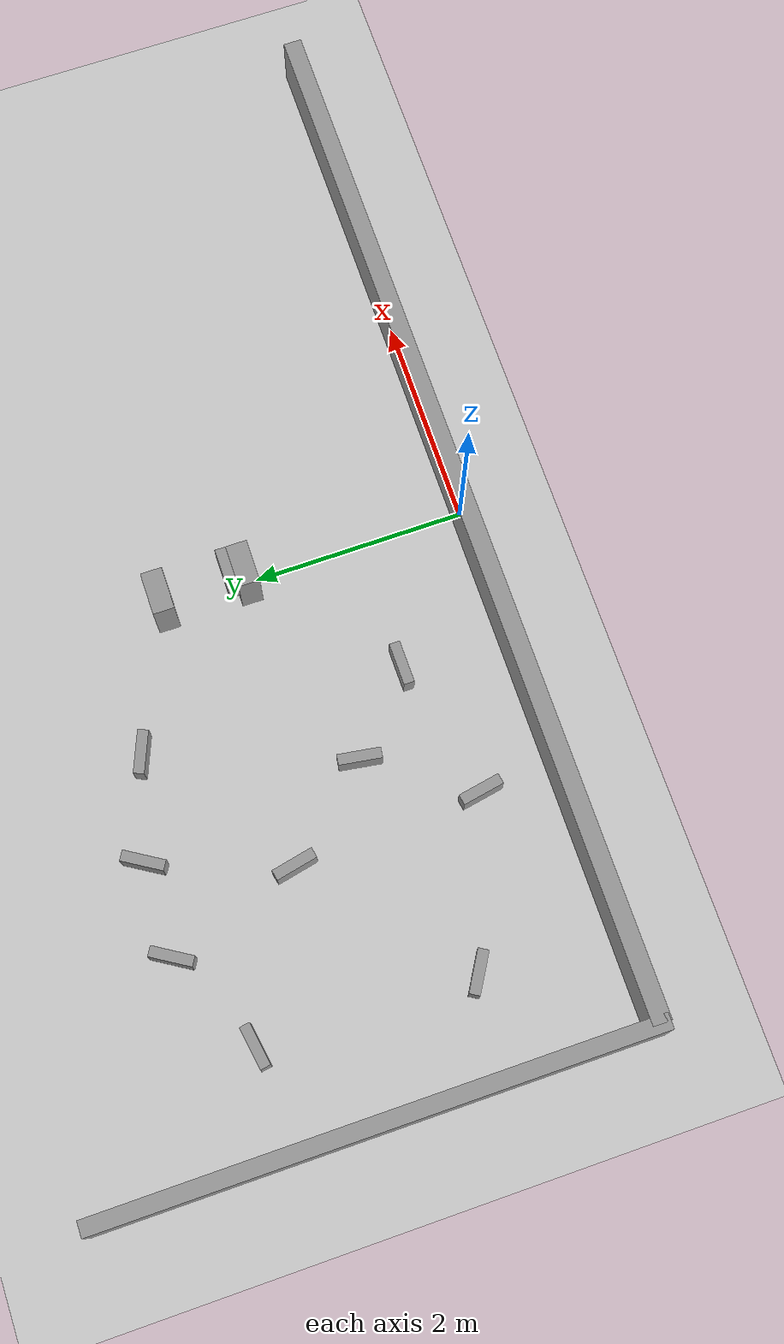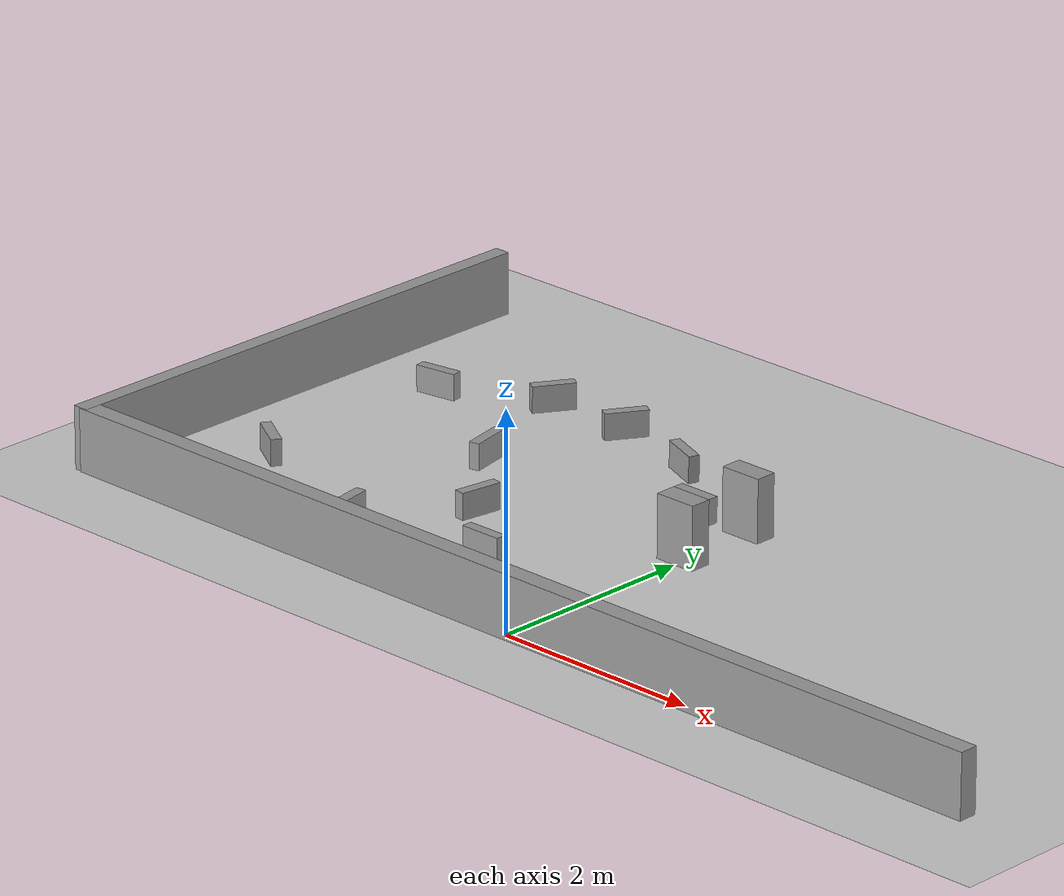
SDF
<sdf version="1.6">
 <world name="default">
  <model name="ground_plane">
   <static>1</static>
   <link name="link">
    <collision name="collision">
     <geometry><plane><normal>0 0 1</normal><size>100 100</size></plane></geometry>
     <surface><friction><ode><mu>100</mu><mu2>50</mu2></ode></friction></surface>
    </collision>
    <visual name="visual">
     <cast_shadows>0</cast_shadows>
     <geometry><plane><normal>0 0 1</normal><size>100 100</size></plane></geometry>
     <material>
      <script><uri>file://media/materials/scripts/gazebo.material</uri><name>Gazebo/Grey</name></script>
     </material>
    </visual>
   </link>
  </model>
  <model name="unit_box">
   <link name="link">
    <inertial>
     <mass>1</mass>
     <inertia>
      <ixx>0.166667</ixx>
      <ixy>0</ixy>
      <ixz>0</ixz>
      <iyy>0.166667</iyy>
      <iyz>0</iyz>
      <izz>0.166667</izz>
     </inertia>
    </inertial>
    <pose>0 0 0.3 0 -0 0</pose>
    <visual name="visual">
     <geometry><box><size>10 0.175 0.59</size></box></geometry>
     <material>
      <script><name>Gazebo/Grey</name><uri>file://media/materials/scripts/gazebo.material</uri></script>
      <shader type="pixel"><normal_map>__default__</normal_map></shader>
      <ambient>0.3 0.3 0.3 1</ambient>
      <diffuse>0.7 0.7 0.7 1</diffuse>
      <specular>0.01 0.01 0.01 1</specular>
      <emissive>0 0 0 1</emissive>
     </material>
    </visual>
    <collision name="collision">
     <geometry><box><size>10 0.175 0.59</size></box></geometry>
     <surface>
      <friction>
       <ode><mu>1</mu><mu2>1</mu2><fdir1>0 0 0</fdir1><slip1>0</slip1><slip2>0</slip2></ode>
       <torsional>
        <coefficient>1</coefficient>
        <patch_radius>0</patch_radius>
        <surface_radius>0</surface_radius>
        <use_patch_radius>1</use_patch_radius>
        <ode><slip>0</slip></ode>
       </torsional>
      </friction>
      <bounce><restitution_coefficient>0</restitution_coefficient><threshold>1e+06</threshold></bounce>
      <contact>
       <collide_without_contact>0</collide_without_contact>
       <collide_without_contact_bitmask>1</collide_without_contact_bitmask>
       <collide_bitmask>1</collide_bitmask>
       <ode>
        <soft_cfm>0</soft_cfm>
        <soft_erp>0.2</soft_erp>
        <kp>1e+13</kp>
        <kd>1</kd>
        <max_vel>0.01</max_vel>
        <min_depth>0</min_depth>
       </ode>
       <bullet>
        <split_impulse>1</split_impulse>
        <split_impulse_penetration_threshold>-0.01</split_impulse_penetration_threshold>
        <soft_cfm>0</soft_cfm>
        <soft_erp>0.2</soft_erp>
        <kp>1e+13</kp>
        <kd>1</kd>
       </bullet>
      </contact>
     </surface>
    </collision>
   </link>
   <link name="link_0">
    <inertial>
     <mass>1</mass>
     <inertia>
      <ixx>0.166667</ixx>
      <ixy>0</ixy>
      <ixz>0</ixz>
      <iyy>0.166667</iyy>
      <iyz>0</iyz>
      <izz>0.166667</izz>
     </inertia>
    </inertial>
    <pose>-5 2.5 0.3 0 -0 0</pose>
    <visual name="visual">
     <geometry><box><size>0.15 5.15 0.59</size></box></geometry>
     <material>
      <lighting>1</lighting>
      <script><uri>file://media/materials/scripts/gazebo.material</uri><name>Gazebo/Grey</name></script>
      <shader type="pixel"><normal_map>__default__</normal_map></shader>
      <ambient>0.3 0.3 0.3 1</ambient>
      <diffuse>0.7 0.7 0.7 1</diffuse>
      <specular>0.01 0.01 0.01 1</specular>
      <emissive>0 0 0 1</emissive>
     </material>
    </visual>
    <collision name="collision">
     <geometry><box><size>0.15 5.15 0.59</size></box></geometry>
     <surface>
      <friction>
       <ode><mu>1</mu><mu2>1</mu2><fdir1>0 0 0</fdir1><slip1>0</slip1><slip2>0</slip2></ode>
       <torsional>
        <coefficient>1</coefficient>
        <patch_radius>0</patch_radius>
        <surface_radius>0</surface_radius>
        <use_patch_radius>1</use_patch_radius>
        <ode><slip>0</slip></ode>
       </torsional>
      </friction>
      <bounce><restitution_coefficient>0</restitution_coefficient><threshold>1e+06</threshold></bounce>
      <contact>
       <collide_without_contact>0</collide_without_contact>
       <collide_without_contact_bitmask>1</collide_without_contact_bitmask>
       <collide_bitmask>1</collide_bitmask>
       <ode>
        <soft_cfm>0</soft_cfm>
        <soft_erp>0.2</soft_erp>
        <kp>1e+13</kp>
        <kd>1</kd>
        <max_vel>0.01</max_vel>
        <min_depth>0</min_depth>
       </ode>
       <bullet>
        <split_impulse>1</split_impulse>
        <split_impulse_penetration_threshold>-0.01</split_impulse_penetration_threshold>
        <soft_cfm>0</soft_cfm>
        <soft_erp>0.2</soft_erp>
        <kp>1e+13</kp>
        <kd>1</kd>
       </bullet>
      </contact>
     </surface>
    </collision>
   </link>
   <link name="link_1">
    <inertial>
     <mass>1</mass>
     <inertia>
      <ixx>0.166667</ixx>
      <ixy>0</ixy>
      <ixz>0</ixz>
      <iyy>0.166667</iyy>
      <iyz>0</iyz>
      <izz>0.166667</izz>
     </inertia>
    </inertial>
    <pose>0 2.1 0.3 0 -0 0</pose>
    <visual name="visual">
     <geometry><box><size>0.4 0.2 0.59</size></box></geometry>
     <material>
      <lighting>1</lighting>
      <script><uri>file://media/materials/scripts/gazebo.material</uri><name>Gazebo/Grey</name></script>
      <shader type="pixel"><normal_map>__default__</normal_map></shader>
      <ambient>0.3 0.3 0.3 1</ambient>
      <diffuse>0.7 0.7 0.7 1</diffuse>
      <specular>0.01 0.01 0.01 1</specular>
      <emissive>0 0 0 1</emissive>
     </material>
    </visual>
    <collision name="collision">
     <geometry><box><size>0.4 0.2 0.59</size></box></geometry>
     <surface>
      <friction>
       <ode><mu>1</mu><mu2>1</mu2><fdir1>0 0 0</fdir1><slip1>0</slip1><slip2>0</slip2></ode>
       <torsional>
        <coefficient>1</coefficient>
        <patch_radius>0</patch_radius>
        <surface_radius>0</surface_radius>
        <use_patch_radius>1</use_patch_radius>
        <ode><slip>0</slip></ode>
       </torsional>
      </friction>
      <bounce><restitution_coefficient>0</restitution_coefficient><threshold>1e+06</threshold></bounce>
      <contact>
       <collide_without_contact>0</collide_without_contact>
       <collide_without_contact_bitmask>1</collide_without_contact_bitmask>
       <collide_bitmask>1</collide_bitmask>
       <ode>
        <soft_cfm>0</soft_cfm>
        <soft_erp>0.2</soft_erp>
        <kp>1e+13</kp>
        <kd>1</kd>
        <max_vel>0.01</max_vel>
        <min_depth>0</min_depth>
       </ode>
       <bullet>
        <split_impulse>1</split_impulse>
        <split_impulse_penetration_threshold>-0.01</split_impulse_penetration_threshold>
        <soft_cfm>0</soft_cfm>
        <soft_erp>0.2</soft_erp>
        <kp>1e+13</kp>
        <kd>1</kd>
       </bullet>
      </contact>
     </surface>
    </collision>
   </link>
   <link name="link_1_clone">
    <inertial>
     <mass>1</mass>
     <inertia>
      <ixx>0.166667</ixx>
      <ixy>0</ixy>
      <ixz>0</ixz>
      <iyy>0.166667</iyy>
      <iyz>0</iyz>
      <izz>0.166667</izz>
     </inertia>
     <pose>0 -0.01 0 0 -0 0</pose>
    </inertial>
    <pose>0 2.9 0.3 0 -0 0</pose>
    <visual name="visual">
     <geometry><box><size>0.4 0.2 0.59</size></box></geometry>
     <material>
      <lighting>1</lighting>
      <script><uri>file://media/materials/scripts/gazebo.material</uri><name>Gazebo/Grey</name></script>
      <shader type="pixel"><normal_map>__default__</normal_map></shader>
      <ambient>0.3 0.3 0.3 1</ambient>
      <diffuse>0.7 0.7 0.7 1</diffuse>
      <specular>0.01 0.01 0.01 1</specular>
      <emissive>0 0 0 1</emissive>
     </material>
    </visual>
    <collision name="collision">
     <geometry><box><size>0.4 0.2 0.59</size></box></geometry>
     <surface>
      <friction>
       <ode><mu>1</mu><mu2>1</mu2><fdir1>0 0 0</fdir1><slip1>0</slip1><slip2>0</slip2></ode>
       <torsional>
        <coefficient>1</coefficient>
        <patch_radius>0</patch_radius>
        <surface_radius>0</surface_radius>
        <use_patch_radius>1</use_patch_radius>
        <ode><slip>0</slip></ode>
       </torsional>
      </friction>
      <bounce><restitution_coefficient>0</restitution_coefficient><threshold>1e+06</threshold></bounce>
      <contact>
       <collide_without_contact>0</collide_without_contact>
       <collide_without_contact_bitmask>1</collide_without_contact_bitmask>
       <collide_bitmask>1</collide_bitmask>
       <ode>
        <soft_cfm>0</soft_cfm>
        <soft_erp>0.2</soft_erp>
        <kp>1e+13</kp>
        <kd>1</kd>
        <max_vel>0.01</max_vel>
        <min_depth>0</min_depth>
       </ode>
       <bullet>
        <split_impulse>1</split_impulse>
        <split_impulse_penetration_threshold>-0.01</split_impulse_penetration_threshold>
        <soft_cfm>0</soft_cfm>
        <soft_erp>0.2</soft_erp>
        <kp>1e+13</kp>
        <kd>1</kd>
       </bullet>
      </contact>
     </surface>
    </collision>
   </link>
   <link name="link_1_clone_0">
    <inertial>
     <mass>1</mass>
     <inertia>
      <ixx>0.166667</ixx>
      <ixy>0</ixy>
      <ixz>0</ixz>
      <iyy>0.166667</iyy>
      <iyz>0</iyz>
      <izz>0.166667</izz>
     </inertia>
    </inertial>
    <pose>0 2.25 0.475 0 -0 0</pose>
    <visual name="visual">
     <geometry><box><size>0.4 0.1 0.24</size></box></geometry>
     <material>
      <lighting>1</lighting>
      <script><uri>file://media/materials/scripts/gazebo.material</uri><name>Gazebo/Grey</name></script>
      <shader type="pixel"><normal_map>__default__</normal_map></shader>
      <ambient>0.3 0.3 0.3 1</ambient>
      <diffuse>0.7 0.7 0.7 1</diffuse>
      <specular>0.01 0.01 0.01 1</specular>
      <emissive>0 0 0 1</emissive>
     </material>
    </visual>
    <collision name="collision">
     <geometry><box><size>0.4 0.1 0.24</size></box></geometry>
     <surface>
      <friction>
       <ode><mu>1</mu><mu2>1</mu2><fdir1>0 0 0</fdir1><slip1>0</slip1><slip2>0</slip2></ode>
       <torsional>
        <coefficient>1</coefficient>
        <patch_radius>0</patch_radius>
        <surface_radius>0</surface_radius>
        <use_patch_radius>1</use_patch_radius>
        <ode><slip>0</slip></ode>
       </torsional>
      </friction>
      <bounce><restitution_coefficient>0</restitution_coefficient><threshold>1e+06</threshold></bounce>
      <contact>
       <collide_without_contact>0</collide_without_contact>
       <collide_without_contact_bitmask>1</collide_without_contact_bitmask>
       <collide_bitmask>1</collide_bitmask>
       <ode>
        <soft_cfm>0</soft_cfm>
        <soft_erp>0.2</soft_erp>
        <kp>1e+13</kp>
        <kd>1</kd>
        <max_vel>0.01</max_vel>
        <min_depth>0</min_depth>
       </ode>
       <bullet>
        <split_impulse>1</split_impulse>
        <split_impulse_penetration_threshold>-0.01</split_impulse_penetration_threshold>
        <soft_cfm>0</soft_cfm>
        <soft_erp>0.2</soft_erp>
        <kp>1e+13</kp>
        <kd>1</kd>
       </bullet>
      </contact>
     </surface>
    </collision>
   </link>
   <link name="link_1_clone_0_clone_clone_1">
    <inertial>
     <mass>1</mass>
     <inertia>
      <ixx>0.166667</ixx>
      <ixy>0</ixy>
      <ixz>0</ixz>
      <iyy>0.166667</iyy>
      <iyz>0</iyz>
      <izz>0.166667</izz>
     </inertia>
    </inertial>
    <pose>-2.67133 2.49509 0.125 0 0 -1.36276</pose>
    <visual name="visual">
     <geometry><box><size>0.4 0.1 0.25</size></box></geometry>
     <material>
      <lighting>1</lighting>
      <script><uri>file://media/materials/scripts/gazebo.material</uri><name>Gazebo/Grey</name></script>
      <shader type="pixel"><normal_map>__default__</normal_map></shader>
      <ambient>0.3 0.3 0.3 1</ambient>
      <diffuse>0.7 0.7 0.7 1</diffuse>
      <specular>0.01 0.01 0.01 1</specular>
      <emissive>0 0 0 1</emissive>
     </material>
    </visual>
    <collision name="collision">
     <geometry><box><size>0.4 0.1 0.25</size></box></geometry>
     <surface>
      <friction>
       <ode><mu>1</mu><mu2>1</mu2><fdir1>0 0 0</fdir1><slip1>0</slip1><slip2>0</slip2></ode>
       <torsional>
        <coefficient>1</coefficient>
        <patch_radius>0</patch_radius>
        <surface_radius>0</surface_radius>
        <use_patch_radius>1</use_patch_radius>
        <ode><slip>0</slip></ode>
       </torsional>
      </friction>
      <bounce><restitution_coefficient>0</restitution_coefficient><threshold>1e+06</threshold></bounce>
      <contact>
       <collide_without_contact>0</collide_without_contact>
       <collide_without_contact_bitmask>1</collide_without_contact_bitmask>
       <collide_bitmask>1</collide_bitmask>
       <ode>
        <soft_cfm>0</soft_cfm>
        <soft_erp>0.2</soft_erp>
        <kp>1e+13</kp>
        <kd>1</kd>
        <max_vel>0.01</max_vel>
        <min_depth>0</min_depth>
       </ode>
       <bullet>
        <split_impulse>1</split_impulse>
        <split_impulse_penetration_threshold>-0.01</split_impulse_penetration_threshold>
        <soft_cfm>0</soft_cfm>
        <soft_erp>0.2</soft_erp>
        <kp>1e+13</kp>
        <kd>1</kd>
       </bullet>
      </contact>
     </surface>
    </collision>
   </link>
   <link name="link_1_clone_0_clone_clone_1_clone">
    <inertial>
     <mass>1</mass>
     <inertia>
      <ixx>0.166667</ixx>
      <ixy>0</ixy>
      <ixz>0</ixz>
      <iyy>0.166667</iyy>
      <iyz>0</iyz>
      <izz>0.166667</izz>
     </inertia>
    </inertial>
    <pose>-2.21288 3.7408 0.125 0 -0 1.0177</pose>
    <visual name="visual">
     <geometry><box><size>0.4 0.1 0.25</size></box></geometry>
     <material>
      <lighting>1</lighting>
      <script><uri>file://media/materials/scripts/gazebo.material</uri><name>Gazebo/Grey</name></script>
      <shader type="pixel"><normal_map>__default__</normal_map></shader>
      <ambient>0.3 0.3 0.3 1</ambient>
      <diffuse>0.7 0.7 0.7 1</diffuse>
      <specular>0.01 0.01 0.01 1</specular>
      <emissive>0 0 0 1</emissive>
     </material>
    </visual>
    <collision name="collision">
     <geometry><box><size>0.4 0.1 0.25</size></box></geometry>
     <surface>
      <friction>
       <ode><mu>1</mu><mu2>1</mu2><fdir1>0 0 0</fdir1><slip1>0</slip1><slip2>0</slip2></ode>
       <torsional>
        <coefficient>1</coefficient>
        <patch_radius>0</patch_radius>
        <surface_radius>0</surface_radius>
        <use_patch_radius>1</use_patch_radius>
        <ode><slip>0</slip></ode>
       </torsional>
      </friction>
      <bounce><restitution_coefficient>0</restitution_coefficient><threshold>1e+06</threshold></bounce>
      <contact>
       <collide_without_contact>0</collide_without_contact>
       <collide_without_contact_bitmask>1</collide_without_contact_bitmask>
       <collide_bitmask>1</collide_bitmask>
       <ode>
        <soft_cfm>0</soft_cfm>
        <soft_erp>0.2</soft_erp>
        <kp>1e+13</kp>
        <kd>1</kd>
        <max_vel>0.01</max_vel>
        <min_depth>0</min_depth>
       </ode>
       <bullet>
        <split_impulse>1</split_impulse>
        <split_impulse_penetration_threshold>-0.01</split_impulse_penetration_threshold>
        <soft_cfm>0</soft_cfm>
        <soft_erp>0.2</soft_erp>
        <kp>1e+13</kp>
        <kd>1</kd>
       </bullet>
      </contact>
     </surface>
    </collision>
   </link>
   <link name="link_1_clone_0_clone_clone_1_clone_0">
    <inertial>
     <mass>1</mass>
     <inertia>
      <ixx>0.166667</ixx>
      <ixy>0</ixy>
      <ixz>0</ixz>
      <iyy>0.166667</iyy>
      <iyz>0</iyz>
      <izz>0.166667</izz>
     </inertia>
    </inertial>
    <pose>-1.9425 1.64707 0.125 0 -0 1.42</pose>
    <visual name="visual">
     <geometry><box><size>0.4 0.1 0.25</size></box></geometry>
     <material>
      <lighting>1</lighting>
      <script><uri>file://media/materials/scripts/gazebo.material</uri><name>Gazebo/Grey</name></script>
      <shader type="pixel"><normal_map>__default__</normal_map></shader>
      <ambient>0.3 0.3 0.3 1</ambient>
      <diffuse>0.7 0.7 0.7 1</diffuse>
      <specular>0.01 0.01 0.01 1</specular>
      <emissive>0 0 0 1</emissive>
     </material>
    </visual>
    <collision name="collision">
     <geometry><box><size>0.4 0.1 0.25</size></box></geometry>
     <surface>
      <friction>
       <ode><mu>1</mu><mu2>1</mu2><fdir1>0 0 0</fdir1><slip1>0</slip1><slip2>0</slip2></ode>
       <torsional>
        <coefficient>1</coefficient>
        <patch_radius>0</patch_radius>
        <surface_radius>0</surface_radius>
        <use_patch_radius>1</use_patch_radius>
        <ode><slip>0</slip></ode>
       </torsional>
      </friction>
      <bounce><restitution_coefficient>0</restitution_coefficient><threshold>1e+06</threshold></bounce>
      <contact>
       <collide_without_contact>0</collide_without_contact>
       <collide_without_contact_bitmask>1</collide_without_contact_bitmask>
       <collide_bitmask>1</collide_bitmask>
       <ode>
        <soft_cfm>0</soft_cfm>
        <soft_erp>0.2</soft_erp>
        <kp>1e+13</kp>
        <kd>1</kd>
        <max_vel>0.01</max_vel>
        <min_depth>0</min_depth>
       </ode>
       <bullet>
        <split_impulse>1</split_impulse>
        <split_impulse_penetration_threshold>-0.01</split_impulse_penetration_threshold>
        <soft_cfm>0</soft_cfm>
        <soft_erp>0.2</soft_erp>
        <kp>1e+13</kp>
        <kd>1</kd>
       </bullet>
      </contact>
     </surface>
    </collision>
   </link>
   <link name="link_1_clone_0_clone_clone_1_clone_1">
    <inertial>
     <mass>1</mass>
     <inertia>
      <ixx>0.166667</ixx>
      <ixy>0</ixy>
      <ixz>0</ixz>
      <iyy>0.166667</iyy>
      <iyz>0</iyz>
      <izz>0.166667</izz>
     </inertia>
    </inertial>
    <pose>-1.27339 3.47747 0.125 0 0 -0.389342</pose>
    <visual name="visual">
     <geometry><box><size>0.4 0.1 0.25</size></box></geometry>
     <material>
      <lighting>1</lighting>
      <script><uri>file://media/materials/scripts/gazebo.material</uri><name>Gazebo/Grey</name></script>
      <shader type="pixel"><normal_map>__default__</normal_map></shader>
      <ambient>0.3 0.3 0.3 1</ambient>
      <diffuse>0.7 0.7 0.7 1</diffuse>
      <specular>0.01 0.01 0.01 1</specular>
      <emissive>0 0 0 1</emissive>
     </material>
    </visual>
    <collision name="collision">
     <geometry><box><size>0.4 0.1 0.25</size></box></geometry>
     <surface>
      <friction>
       <ode><mu>1</mu><mu2>1</mu2><fdir1>0 0 0</fdir1><slip1>0</slip1><slip2>0</slip2></ode>
       <torsional>
        <coefficient>1</coefficient>
        <patch_radius>0</patch_radius>
        <surface_radius>0</surface_radius>
        <use_patch_radius>1</use_patch_radius>
        <ode><slip>0</slip></ode>
       </torsional>
      </friction>
      <bounce><restitution_coefficient>0</restitution_coefficient><threshold>1e+06</threshold></bounce>
      <contact>
       <collide_without_contact>0</collide_without_contact>
       <collide_without_contact_bitmask>1</collide_without_contact_bitmask>
       <collide_bitmask>1</collide_bitmask>
       <ode>
        <soft_cfm>0</soft_cfm>
        <soft_erp>0.2</soft_erp>
        <kp>1e+13</kp>
        <kd>1</kd>
        <max_vel>0.01</max_vel>
        <min_depth>0</min_depth>
       </ode>
       <bullet>
        <split_impulse>1</split_impulse>
        <split_impulse_penetration_threshold>-0.01</split_impulse_penetration_threshold>
        <soft_cfm>0</soft_cfm>
        <soft_erp>0.2</soft_erp>
        <kp>1e+13</kp>
        <kd>1</kd>
       </bullet>
      </contact>
     </surface>
    </collision>
   </link>
   <link name="link_1_clone_0_clone_clone_1_clone_2">
    <inertial>
     <mass>1</mass>
     <inertia>
      <ixx>0.166667</ixx>
      <ixy>0</ixy>
      <ixz>0</ixz>
      <iyy>0.166667</iyy>
      <iyz>0</iyz>
      <izz>0.166667</izz>
     </inertia>
    </inertial>
    <pose>-4.04272 3.29468 0.125 0 0 -2.9823</pose>
    <visual name="visual">
     <geometry><box><size>0.4 0.1 0.25</size></box></geometry>
     <material>
      <lighting>1</lighting>
      <script><uri>file://media/materials/scripts/gazebo.material</uri><name>Gazebo/Grey</name></script>
      <shader type="pixel"><normal_map>__default__</normal_map></shader>
      <ambient>0.3 0.3 0.3 1</ambient>
      <diffuse>0.7 0.7 0.7 1</diffuse>
      <specular>0.01 0.01 0.01 1</specular>
      <emissive>0 0 0 1</emissive>
     </material>
    </visual>
    <collision name="collision">
     <geometry><box><size>0.4 0.1 0.25</size></box></geometry>
     <surface>
      <friction>
       <ode><mu>1</mu><mu2>1</mu2><fdir1>0 0 0</fdir1><slip1>0</slip1><slip2>0</slip2></ode>
       <torsional>
        <coefficient>1</coefficient>
        <patch_radius>0</patch_radius>
        <surface_radius>0</surface_radius>
        <use_patch_radius>1</use_patch_radius>
        <ode><slip>0</slip></ode>
       </torsional>
      </friction>
      <bounce><restitution_coefficient>0</restitution_coefficient><threshold>1e+06</threshold></bounce>
      <contact>
       <collide_without_contact>0</collide_without_contact>
       <collide_without_contact_bitmask>1</collide_without_contact_bitmask>
       <collide_bitmask>1</collide_bitmask>
       <ode>
        <soft_cfm>0</soft_cfm>
        <soft_erp>0.2</soft_erp>
        <kp>1e+13</kp>
        <kd>1</kd>
        <max_vel>0.01</max_vel>
        <min_depth>0</min_depth>
       </ode>
       <bullet>
        <split_impulse>1</split_impulse>
        <split_impulse_penetration_threshold>-0.01</split_impulse_penetration_threshold>
        <soft_cfm>0</soft_cfm>
        <soft_erp>0.2</soft_erp>
        <kp>1e+13</kp>
        <kd>1</kd>
       </bullet>
      </contact>
     </surface>
    </collision>
   </link>
   <link name="link_1_clone_0_clone_clone_1_clone_3">
    <inertial>
     <mass>1</mass>
     <inertia>
      <ixx>0.166667</ixx>
      <ixy>0</ixy>
      <ixz>0</ixz>
      <iyy>0.166667</iyy>
      <iyz>0</iyz>
      <izz>0.166667</izz>
     </inertia>
    </inertial>
    <pose>-4.07041 1.27936 0.125 0 -0 2.60178</pose>
    <visual name="visual">
     <geometry><box><size>0.4 0.1 0.25</size></box></geometry>
     <material>
      <lighting>1</lighting>
      <script><uri>file://media/materials/scripts/gazebo.material</uri><name>Gazebo/Grey</name></script>
      <shader type="pixel"><normal_map>__default__</normal_map></shader>
      <ambient>0.3 0.3 0.3 1</ambient>
      <diffuse>0.7 0.7 0.7 1</diffuse>
      <specular>0.01 0.01 0.01 1</specular>
      <emissive>0 0 0 1</emissive>
     </material>
    </visual>
    <collision name="collision">
     <geometry><box><size>0.4 0.1 0.25</size></box></geometry>
     <surface>
      <friction>
       <ode><mu>1</mu><mu2>1</mu2><fdir1>0 0 0</fdir1><slip1>0</slip1><slip2>0</slip2></ode>
       <torsional>
        <coefficient>1</coefficient>
        <patch_radius>0</patch_radius>
        <surface_radius>0</surface_radius>
        <use_patch_radius>1</use_patch_radius>
        <ode><slip>0</slip></ode>
       </torsional>
      </friction>
      <bounce><restitution_coefficient>0</restitution_coefficient><threshold>1e+06</threshold></bounce>
      <contact>
       <collide_without_contact>0</collide_without_contact>
       <collide_without_contact_bitmask>1</collide_without_contact_bitmask>
       <collide_bitmask>1</collide_bitmask>
       <ode>
        <soft_cfm>0</soft_cfm>
        <soft_erp>0.2</soft_erp>
        <kp>1e+13</kp>
        <kd>1</kd>
        <max_vel>0.01</max_vel>
        <min_depth>0</min_depth>
       </ode>
       <bullet>
        <split_impulse>1</split_impulse>
        <split_impulse_penetration_threshold>-0.01</split_impulse_penetration_threshold>
        <soft_cfm>0</soft_cfm>
        <soft_erp>0.2</soft_erp>
        <kp>1e+13</kp>
        <kd>1</kd>
       </bullet>
      </contact>
     </surface>
    </collision>
   </link>
   <link name="link_1_clone_0_clone_clone_1_clone_4">
    <inertial>
     <mass>1</mass>
     <inertia>
      <ixx>0.166667</ixx>
      <ixy>0</ixy>
      <ixz>0</ixz>
      <iyy>0.166667</iyy>
      <iyz>0</iyz>
      <izz>0.166667</izz>
     </inertia>
    </inertial>
    <pose>-2.57333 0.72312 0.125 0 -0 1.75222</pose>
    <visual name="visual">
     <geometry><box><size>0.4 0.1 0.25</size></box></geometry>
     <material>
      <lighting>1</lighting>
      <script><uri>file://media/materials/scripts/gazebo.material</uri><name>Gazebo/Grey</name></script>
      <shader type="pixel"><normal_map>__default__</normal_map></shader>
      <ambient>0.3 0.3 0.3 1</ambient>
      <diffuse>0.7 0.7 0.7 1</diffuse>
      <specular>0.01 0.01 0.01 1</specular>
      <emissive>0 0 0 1</emissive>
     </material>
    </visual>
    <collision name="collision">
     <geometry><box><size>0.4 0.1 0.25</size></box></geometry>
     <surface>
      <friction>
       <ode><mu>1</mu><mu2>1</mu2><fdir1>0 0 0</fdir1><slip1>0</slip1><slip2>0</slip2></ode>
       <torsional>
        <coefficient>1</coefficient>
        <patch_radius>0</patch_radius>
        <surface_radius>0</surface_radius>
        <use_patch_radius>1</use_patch_radius>
        <ode><slip>0</slip></ode>
       </torsional>
      </friction>
      <bounce><restitution_coefficient>0</restitution_coefficient><threshold>1e+06</threshold></bounce>
      <contact>
       <collide_without_contact>0</collide_without_contact>
       <collide_without_contact_bitmask>1</collide_without_contact_bitmask>
       <collide_bitmask>1</collide_bitmask>
       <ode>
        <soft_cfm>0</soft_cfm>
        <soft_erp>0.2</soft_erp>
        <kp>1e+13</kp>
        <kd>1</kd>
        <max_vel>0.01</max_vel>
        <min_depth>0</min_depth>
       </ode>
       <bullet>
        <split_impulse>1</split_impulse>
        <split_impulse_penetration_threshold>-0.01</split_impulse_penetration_threshold>
        <soft_cfm>0</soft_cfm>
        <soft_erp>0.2</soft_erp>
        <kp>1e+13</kp>
        <kd>1</kd>
       </bullet>
      </contact>
     </surface>
    </collision>
   </link>
   <link name="link_1_clone_0_clone_clone_1_clone_5">
    <inertial>
     <mass>1</mass>
     <inertia>
      <ixx>0.166667</ixx>
      <ixy>0</ixy>
      <ixz>0</ixz>
      <iyy>0.166667</iyy>
      <iyz>0</iyz>
      <izz>0.166667</izz>
     </inertia>
    </inertial>
    <pose>-3.08821 3.74797 0.125 0 -0 1.0177</pose>
    <visual name="visual">
     <geometry><box><size>0.4 0.1 0.25</size></box></geometry>
     <material>
      <lighting>1</lighting>
      <script><uri>file://media/materials/scripts/gazebo.material</uri><name>Gazebo/Grey</name></script>
      <shader type="pixel"><normal_map>__default__</normal_map></shader>
      <ambient>0.3 0.3 0.3 1</ambient>
      <diffuse>0.7 0.7 0.7 1</diffuse>
      <specular>0.01 0.01 0.01 1</specular>
      <emissive>0 0 0 1</emissive>
     </material>
    </visual>
    <collision name="collision">
     <geometry><box><size>0.4 0.1 0.25</size></box></geometry>
     <surface>
      <friction>
       <ode><mu>1</mu><mu2>1</mu2><fdir1>0 0 0</fdir1><slip1>0</slip1><slip2>0</slip2></ode>
       <torsional>
        <coefficient>1</coefficient>
        <patch_radius>0</patch_radius>
        <surface_radius>0</surface_radius>
        <use_patch_radius>1</use_patch_radius>
        <ode><slip>0</slip></ode>
       </torsional>
      </friction>
      <bounce><restitution_coefficient>0</restitution_coefficient><threshold>1e+06</threshold></bounce>
      <contact>
       <collide_without_contact>0</collide_without_contact>
       <collide_without_contact_bitmask>1</collide_without_contact_bitmask>
       <collide_bitmask>1</collide_bitmask>
       <ode>
        <soft_cfm>0</soft_cfm>
        <soft_erp>0.2</soft_erp>
        <kp>1e+13</kp>
        <kd>1</kd>
        <max_vel>0.01</max_vel>
        <min_depth>0</min_depth>
       </ode>
       <bullet>
        <split_impulse>1</split_impulse>
        <split_impulse_penetration_threshold>-0.01</split_impulse_penetration_threshold>
        <soft_cfm>0</soft_cfm>
        <soft_erp>0.2</soft_erp>
        <kp>1e+13</kp>
        <kd>1</kd>
       </bullet>
      </contact>
     </surface>
    </collision>
   </link>
   <link name="link_1_clone_0_clone_clone_1_clone_6">
    <inertial>
     <mass>1</mass>
     <inertia>
      <ixx>0.166667</ixx>
      <ixy>0</ixy>
      <ixz>0</ixz>
      <iyy>0.166667</iyy>
      <iyz>0</iyz>
      <izz>0.166667</izz>
     </inertia>
    </inertial>
    <pose>-1.2487 1.01109 0.125 0 -0 0.01</pose>
    <visual name="visual">
     <geometry><box><size>0.4 0.1 0.25</size></box></geometry>
     <material>
      <lighting>1</lighting>
      <script><uri>file://media/materials/scripts/gazebo.material</uri><name>Gazebo/Grey</name></script>
      <shader type="pixel"><normal_map>__default__</normal_map></shader>
      <ambient>0.3 0.3 0.3 1</ambient>
      <diffuse>0.7 0.7 0.7 1</diffuse>
      <specular>0.01 0.01 0.01 1</specular>
      <emissive>0 0 0 1</emissive>
     </material>
    </visual>
    <collision name="collision">
     <geometry><box><size>0.4 0.1 0.25</size></box></geometry>
     <surface>
      <friction>
       <ode><mu>1</mu><mu2>1</mu2><fdir1>0 0 0</fdir1><slip1>0</slip1><slip2>0</slip2></ode>
       <torsional>
        <coefficient>1</coefficient>
        <patch_radius>0</patch_radius>
        <surface_radius>0</surface_radius>
        <use_patch_radius>1</use_patch_radius>
        <ode><slip>0</slip></ode>
       </torsional>
      </friction>
      <bounce><restitution_coefficient>0</restitution_coefficient><threshold>1e+06</threshold></bounce>
      <contact>
       <collide_without_contact>0</collide_without_contact>
       <collide_without_contact_bitmask>1</collide_without_contact_bitmask>
       <collide_bitmask>1</collide_bitmask>
       <ode>
        <soft_cfm>0</soft_cfm>
        <soft_erp>0.2</soft_erp>
        <kp>1e+13</kp>
        <kd>1</kd>
        <max_vel>0.01</max_vel>
        <min_depth>0</min_depth>
       </ode>
       <bullet>
        <split_impulse>1</split_impulse>
        <split_impulse_penetration_threshold>-0.01</split_impulse_penetration_threshold>
        <soft_cfm>0</soft_cfm>
        <soft_erp>0.2</soft_erp>
        <kp>1e+13</kp>
        <kd>1</kd>
       </bullet>
      </contact>
     </surface>
    </collision>
   </link>
   <static>1</static>
  </model>
 </world>
</sdf>
